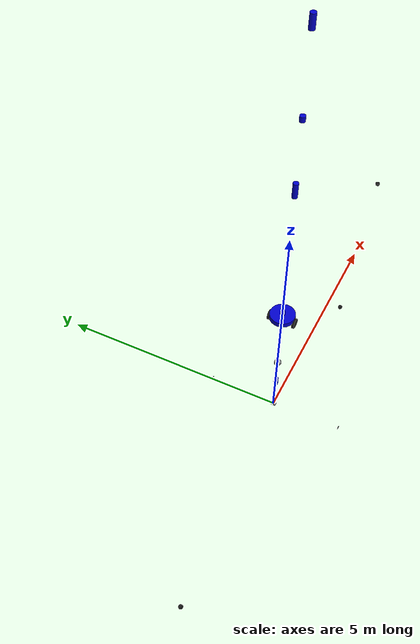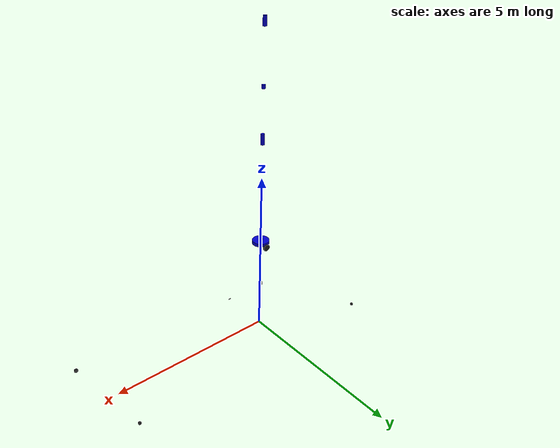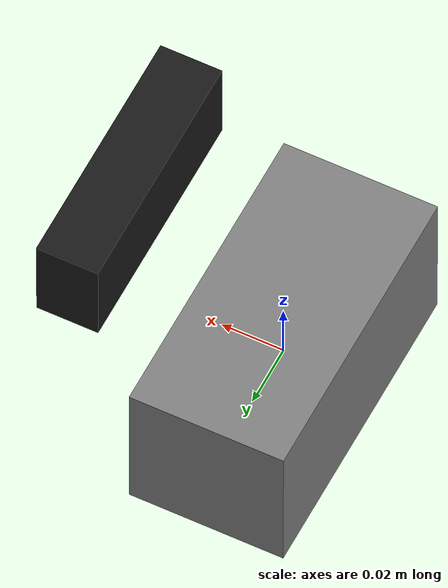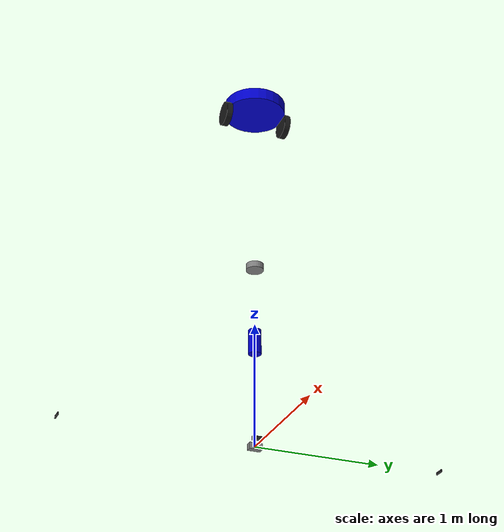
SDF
<?xml version="1.0"?>
<sdf version="1.7">
  <model name="foundry_bot">
    <link name="base_footprint"/>
    <joint name="base_joint" type="fixed">
      <parent>base_footprint</parent>
      <child>base_link</child>
      <pose>0 0 0.1 0 0 0</pose>
    </joint>
    <link name="base_link">
      <pose relative_to="base_joint">0 0 0 0 0 0</pose>
      <inertial><mass>5.0</mass><inertia><ixx>0.1</ixx><iyy>0.1</iyy><izz>0.1</izz></inertia></inertial>
      <visual name="visual"><geometry><cylinder><radius>0.25</radius><length>0.1</length></cylinder></geometry><material><ambient>0 0 0.8 1</ambient><diffuse>0 0 0.8 1</diffuse></material></visual>
      <collision name="collision"><geometry><cylinder><radius>0.25</radius><length>0.1</length></cylinder></geometry></collision>
    </link>
    <joint name="left_wheel_joint" type="revolute">
      <pose relative_to="base_link">0 0.255 0 -1.5708 0 0</pose>
      <parent>base_link</parent>
      <child>left_wheel_link</child>
      <axis><xyz>0 0 1</xyz></axis>
    </joint>
    <link name="left_wheel_link">
      <pose relative_to="left_wheel_joint">0 0 0 0 0 0</pose>
      <inertial><mass>0.5</mass><inertia><ixx>0.01</ixx><iyy>0.01</iyy><izz>0.01</izz></inertia></inertial>
      <visual name="visual"><geometry><cylinder><radius>0.1</radius><length>0.05</length></cylinder></geometry><material><ambient>0.1 0.1 0.1 1</ambient><diffuse>0.1 0.1 0.1 1</diffuse></material></visual>
      <collision name="collision"><geometry><cylinder><radius>0.1</radius><length>0.05</length></cylinder></geometry></collision>
    </link>
    <joint name="right_wheel_joint" type="revolute">
      <pose relative_to="base_link">0 -0.255 0 -1.5708 0 0</pose>
      <parent>base_link</parent>
      <child>right_wheel_link</child>
      <axis><xyz>0 0 1</xyz></axis>
    </joint>
    <link name="right_wheel_link">
      <pose relative_to="right_wheel_joint">0 0 0 0 0 0</pose>
      <inertial><mass>0.5</mass><inertia><ixx>0.01</ixx><iyy>0.01</iyy><izz>0.01</izz></inertia></inertial>
      <visual name="visual"><geometry><cylinder><radius>0.1</radius><length>0.05</length></cylinder></geometry><material><ambient>0.1 0.1 0.1 1</ambient><diffuse>0.1 0.1 0.1 1</diffuse></material></visual>
      <collision name="collision"><geometry><cylinder><radius>0.1</radius><length>0.05</length></cylinder></geometry></collision>
    </link>
    <joint name="caster_0.15_joint" type="fixed"><parent>base_link</parent><child>caster_0.15_link</child><pose>0.15 0 -0.05 0 0 0</pose></joint>
    <link name="caster_0.15_link">
      <pose relative_to="caster_0.15_joint">0 0 0 0 0 0</pose>
      <inertial><mass>0.2</mass><inertia><ixx>0.001</ixx><iyy>0.001</iyy><izz>0.001</izz></inertia></inertial>
      <visual name="visual"><geometry><sphere><radius>0.05</radius></sphere></geometry><material><ambient>0.1 0.1 0.1 1</ambient><diffuse>0.1 0.1 0.1 1</diffuse></material></visual>
      <collision name="collision"><geometry><sphere><radius>0.05</radius></sphere></geometry></collision>
    </link>
    <joint name="caster_-0.15_joint" type="fixed"><parent>base_link</parent><child>caster_-0.15_link</child><pose>-0.15 0 -0.05 0 0 0</pose></joint>
    <link name="caster_-0.15_link">
      <pose relative_to="caster_-0.15_joint">0 0 0 0 0 0</pose>
      <inertial><mass>0.2</mass><inertia><ixx>0.001</ixx><iyy>0.001</iyy><izz>0.001</izz></inertia></inertial>
      <visual name="visual"><geometry><sphere><radius>0.05</radius></sphere></geometry><material><ambient>0.1 0.1 0.1 1</ambient><diffuse>0.1 0.1 0.1 1</diffuse></material></visual>
      <collision name="collision"><geometry><sphere><radius>0.05</radius></sphere></geometry></collision>
    </link>
    <joint name="arm_base_joint" type="fixed"><parent>base_link</parent><child>arm_base_link</child><pose>0 0 0.05 0 0 0</pose></joint>
    <link name="arm_base_link">
      <pose relative_to="arm_base_joint">0 0 0 0 0 0</pose>
      <inertial><mass>0.5</mass><inertia><ixx>0.01</ixx><iyy>0.01</iyy><izz>0.01</izz></inertia></inertial>
      <visual name="visual"><geometry><cylinder><radius>0.07</radius><length>0.05</length></cylinder></geometry><material><ambient>0.5 0.5 0.5 1</ambient><diffuse>0.5 0.5 0.5 1</diffuse></material></visual>
      <collision name="collision"><geometry><cylinder><radius>0.07</radius><length>0.05</length></cylinder></geometry></collision>
    </link>
    <joint name="joint1" type="revolute"><parent>arm_base_link</parent><child>link1</child><pose>0 0 0.025 0 0 0</pose><axis><xyz>0 0 1</xyz><limit><lower>-3.14159</lower><upper>3.14159</upper></limit></axis></joint>
    <link name="link1">
      <pose relative_to="joint1">0 0 0 0 0 0</pose>
      <inertial><mass>1.0</mass><inertia><ixx>0.01</ixx><iyy>0.01</iyy><izz>0.01</izz></inertia></inertial>
      <visual name="visual"><pose>0 0 0.1 0 0 0</pose><geometry><cylinder><radius>0.05</radius><length>0.2</length></cylinder></geometry><material><ambient>0 0 0.8 1</ambient><diffuse>0 0 0.8 1</diffuse></material></visual>
      <collision name="collision"><pose>0 0 0.1 0 0 0</pose><geometry><cylinder><radius>0.05</radius><length>0.2</length></cylinder></geometry></collision>
    </link>
    <joint name="joint2" type="revolute"><parent>link1</parent><child>link2</child><pose>0 0 0.2 0 0 0</pose><axis><xyz>0 1 0</xyz><limit><lower>-1.57079</lower><upper>1.57079</upper></limit></axis></joint>
    <link name="link2">
      <pose relative_to="joint2">0 0 0 0 0 0</pose>
      <inertial><mass>1.5</mass><inertia><ixx>0.01</ixx><iyy>0.01</iyy><izz>0.01</izz></inertia></inertial>
      <visual name="visual"><pose>0 0 0.15 0 0 0</pose><geometry><cylinder><radius>0.05</radius><length>0.3</length></cylinder></geometry><material><ambient>0 0 0.8 1</ambient><diffuse>0 0 0.8 1</diffuse></material></visual>
      <collision name="collision"><pose>0 0 0.15 0 0 0</pose><geometry><cylinder><radius>0.05</radius><length>0.3</length></cylinder></geometry></collision>
    </link>
    <joint name="joint3" type="revolute"><parent>link2</parent><child>link3</child><pose>0 0 0.3 0 0 0</pose><axis><xyz>0 1 0</xyz><limit><lower>-1.57079</lower><upper>1.57079</upper></limit></axis></joint>
    <link name="link3">
      <pose relative_to="joint3">0 0 0 0 0 0</pose>
      <inertial><mass>1.2</mass><inertia><ixx>0.01</ixx><iyy>0.01</iyy><izz>0.01</izz></inertia></inertial>
      <visual name="visual"><pose>0 0 0.125 0 0 0</pose><geometry><cylinder><radius>0.05</radius><length>0.25</length></cylinder></geometry><material><ambient>0 0 0.8 1</ambient><diffuse>0 0 0.8 1</diffuse></material></visual>
      <collision name="collision"><pose>0 0 0.125 0 0 0</pose><geometry><cylinder><radius>0.05</radius><length>0.25</length></cylinder></geometry></collision>
    </link>
    <joint name="joint4" type="revolute"><parent>link3</parent><child>link4</child><pose>0 0 0.25 0 0 0</pose><axis><xyz>1 0 0</xyz><limit><lower>-3.14159</lower><upper>3.14159</upper></limit></axis></joint>
    <link name="link4">
      <pose relative_to="joint4">0 0 0 0 0 0</pose>
      <inertial><mass>0.5</mass><inertia><ixx>0.01</ixx><iyy>0.01</iyy><izz>0.01</izz></inertia></inertial>
      <visual name="visual"><pose>0 0 0.05 0 0 0</pose><geometry><cylinder><radius>0.05</radius><length>0.1</length></cylinder></geometry><material><ambient>0 0 0.8 1</ambient><diffuse>0 0 0.8 1</diffuse></material></visual>
      <collision name="collision"><pose>0 0 0.05 0 0 0</pose><geometry><cylinder><radius>0.05</radius><length>0.1</length></cylinder></geometry></collision>
    </link>
    <joint name="joint5" type="revolute"><parent>link4</parent><child>link5</child><pose>0 0 0.1 0 0 0</pose><axis><xyz>0 1 0</xyz><limit><lower>-1.57079</lower><upper>1.57079</upper></limit></axis></joint>
    <link name="link5">
      <pose relative_to="joint5">0 0 0 0 0 0</pose>
      <inertial><mass>0.5</mass><inertia><ixx>0.01</ixx><iyy>0.01</iyy><izz>0.01</izz></inertia></inertial>
      <visual name="visual"><pose>0 0 0.05 0 0 0</pose><geometry><cylinder><radius>0.05</radius><length>0.1</length></cylinder></geometry><material><ambient>0 0 0.8 1</ambient><diffuse>0 0 0.8 1</diffuse></material></visual>
      <collision name="collision"><pose>0 0 0.05 0 0 0</pose><geometry><cylinder><radius>0.05</radius><length>0.1</length></cylinder></geometry></collision>
    </link>
    <joint name="joint6" type="revolute"><parent>link5</parent><child>tool0</child><pose>0 0 0.1 0 0 0</pose><axis><xyz>1 0 0</xyz><limit><lower>-3.14159</lower><upper>3.14159</upper></limit></axis></joint>
    <link name="tool0">
      <pose relative_to="joint6">0 0 0 0 0 0</pose>
      <inertial><mass>0.001</mass><inertia><ixx>1e-6</ixx><iyy>1e-6</iyy><izz>1e-6</izz></inertia></inertial>
    </link>
    <joint name="gripper_base_joint" type="fixed"><parent>tool0</parent><child>gripper_base</child><pose>0 0 0 0 0 0</pose></joint>
    <link name="gripper_base">
      <pose relative_to="gripper_base_joint">0 0 0 0 0 0</pose>
      <inertial><mass>0.2</mass><inertia><ixx>0.001</ixx><iyy>0.001</iyy><izz>0.001</izz></inertia></inertial>
      <visual name="visual"><geometry><box><size>0.05 0.1 0.05</size></box></geometry><material><ambient>0.5 0.5 0.5 1</ambient><diffuse>0.5 0.5 0.5 1</diffuse></material></visual>
      <collision name="collision"><geometry><box><size>0.05 0.1 0.05</size></box></geometry></collision>
    </link>
    <joint name="finger_left_joint" type="prismatic"><parent>gripper_base</parent><child>finger_left_link</child><pose>0 0.05 0 0 0 0</pose><axis><xyz>0 1 0</xyz><limit><lower>0</lower><upper>0.04</upper></limit></axis></joint>
    <link name="finger_left_link">
      <pose relative_to="finger_left_joint">0 0 0 0 0 0</pose>
      <inertial><mass>0.05</mass><inertia><ixx>1e-5</ixx><iyy>1e-5</iyy><izz>1e-5</izz></inertia></inertial>
      <visual name="visual"><pose>0.04 0 0 0 0 0</pose><geometry><box><size>0.08 0.01 0.02</size></box></geometry><material><ambient>0.1 0.1 0.1 1</ambient><diffuse>0.1 0.1 0.1 1</diffuse></material></visual>
      <collision name="collision"><pose>0.04 0 0 0 0 0</pose><geometry><box><size>0.08 0.01 0.02</size></box></geometry></collision>
    </link>
    <joint name="finger_right_joint" type="prismatic"><parent>gripper_base</parent><child>finger_right_link</child><pose>0 -0.05 0 0 0 0</pose><axis><xyz>0 1 0</xyz><limit><lower>0</lower><upper>0.04</upper></limit></axis></joint>
    <link name="finger_right_link">
      <pose relative_to="finger_right_joint">0 0 0 0 0 0</pose>
      <inertial><mass>0.05</mass><inertia><ixx>1e-5</ixx><iyy>1e-5</iyy><izz>1e-5</izz></inertia></inertial>
      <visual name="visual"><pose>0.04 0 0 0 0 0</pose><geometry><box><size>0.08 0.01 0.02</size></box></geometry><material><ambient>0.1 0.1 0.1 1</ambient><diffuse>0.1 0.1 0.1 1</diffuse></material></visual>
      <collision name="collision"><pose>0.04 0 0 0 0 0</pose><geometry><box><size>0.08 0.01 0.02</size></box></geometry></collision>
    </link>
    <joint name="lidar_joint" type="fixed"><parent>base_link</parent><child>lidar_link</child><pose>0.2 0 0.05 0 0 0</pose></joint>
    <link name="lidar_link">
      <pose relative_to="lidar_joint">0 0 0 0 0 0</pose>
      <inertial><mass>0.1</mass><inertia><ixx>0.001</ixx><iyy>0.001</iyy><izz>0.001</izz></inertia></inertial>
      <visual name="visual"><geometry><cylinder><radius>0.05</radius><length>0.04</length></cylinder></geometry><material><ambient>0.1 0.1 0.1 1</ambient><diffuse>0.1 0.1 0.1 1</diffuse></material></visual>
      <collision name="collision"><geometry><cylinder><radius>0.05</radius><length>0.04</length></cylinder></geometry></collision>
    </link>
    <joint name="camera_joint" type="fixed"><parent>link5</parent><child>camera_link</child><pose>0 0 0.05 0 1.5708 0</pose></joint>
    <link name="camera_link">
      <pose relative_to="camera_joint">0 0 0 0 0 0</pose>
      <inertial><mass>0.05</mass><inertia><ixx>1e-5</ixx><iyy>1e-5</iyy><izz>1e-5</izz></inertia></inertial>
      <visual name="visual"><geometry><box><size>0.02 0.08 0.03</size></box></geometry><material><ambient>0.1 0.1 0.1 1</ambient><diffuse>0.1 0.1 0.1 1</diffuse></material></visual>
      <collision name="collision"><geometry><box><size>0.02 0.08 0.03</size></box></geometry></collision>
    </link>

    <!-- == FINAL FIX: ROS2 Control Plugin in SDF format   == -->
    <plugin filename="libgazebo_ros2_control.so" name="gazebo_ros2_control">
        <parameters>$(find ros2_foundry_description)/config/ros2_controllers.yaml</parameters>
        <robot_sim_type>gazebo_ros2_control/DefaultRobotHWSim</robot_sim_type>
    </plugin>

  </model>
</sdf>
